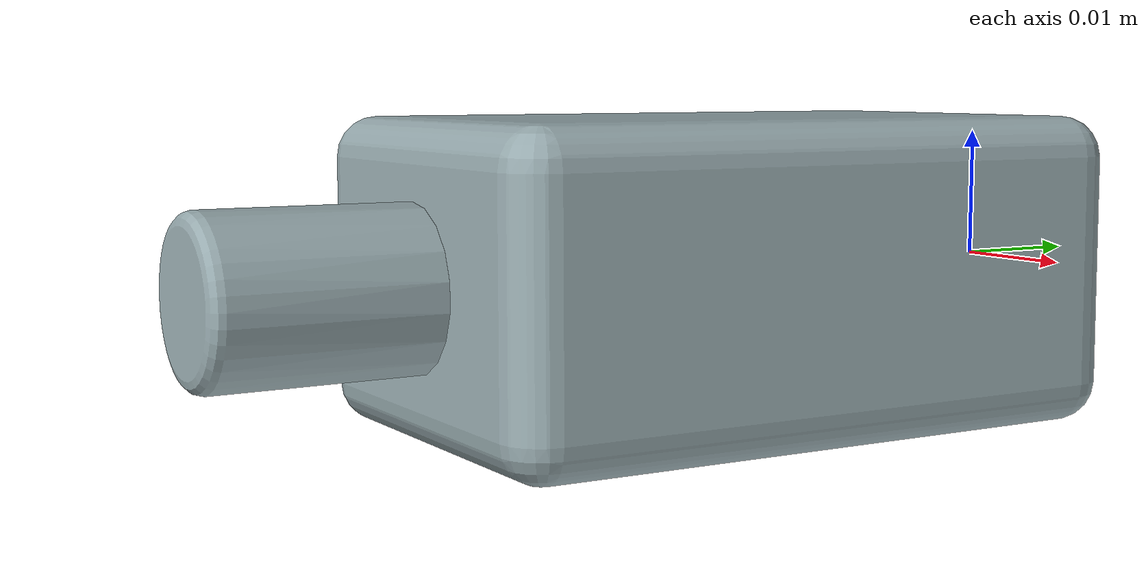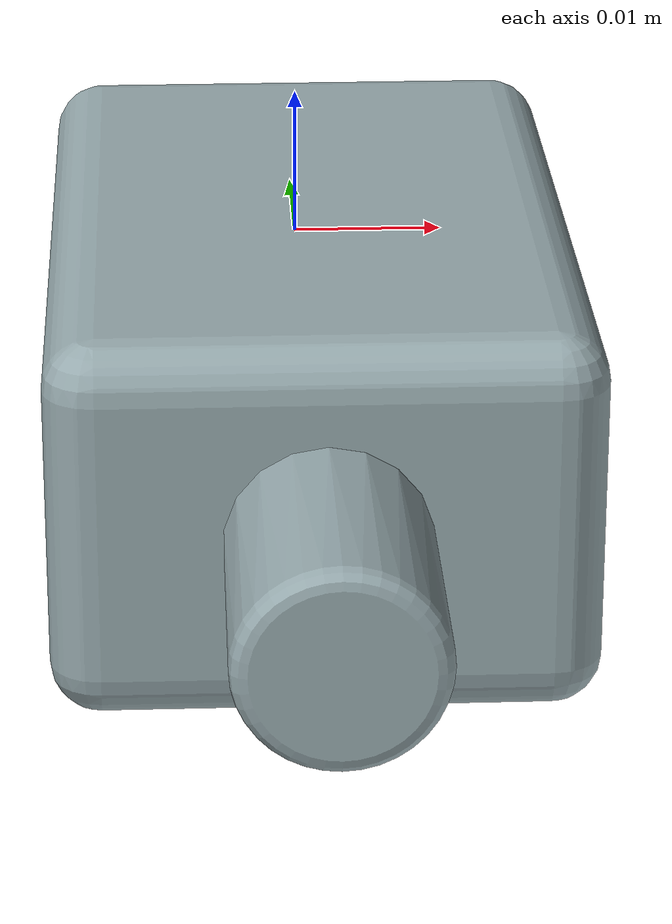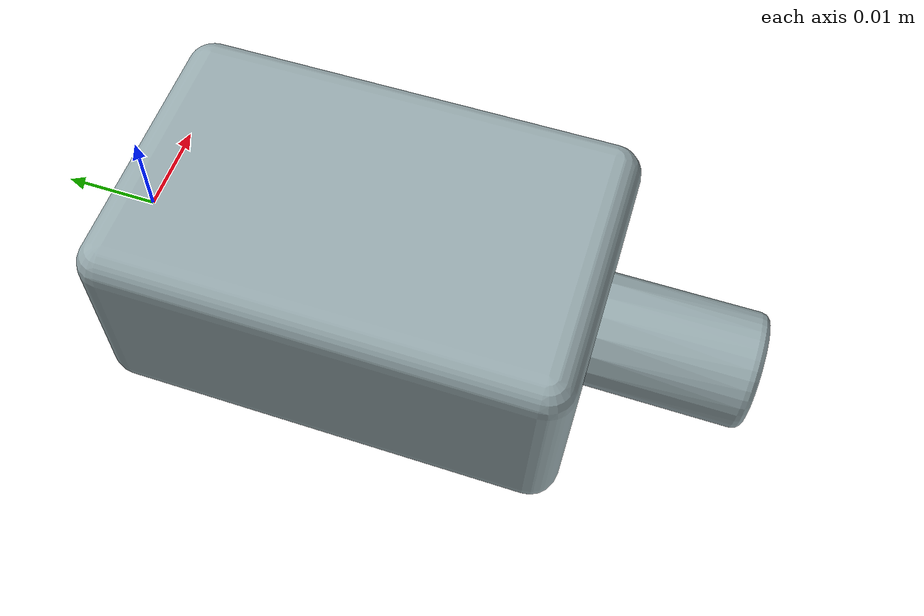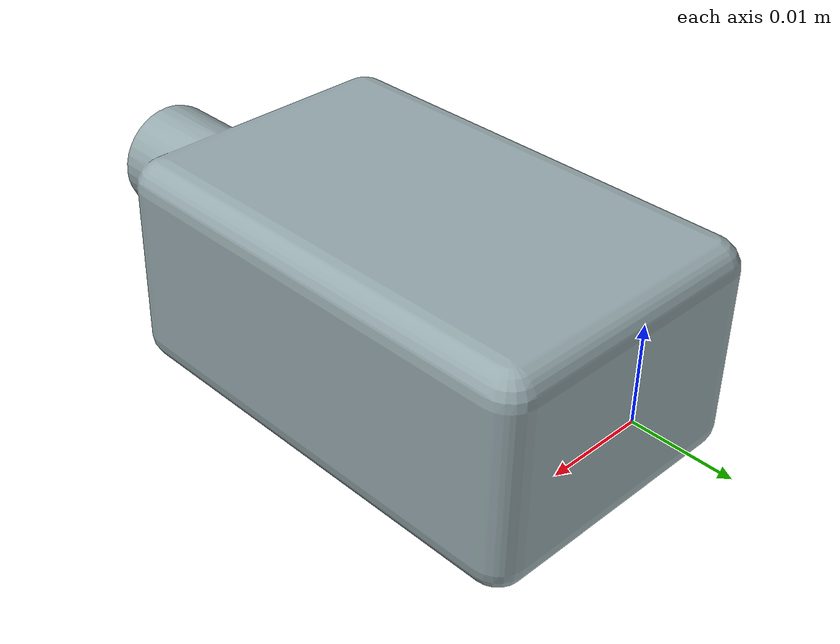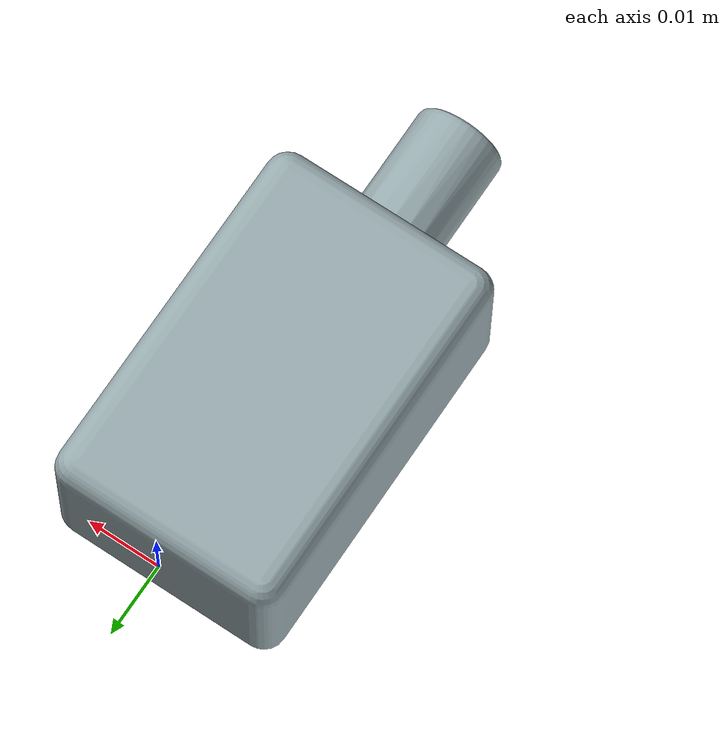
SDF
<?xml version="1.0"?>
<sdf version="1.7">
  <model name="lotion_1">
    <link name="lotion_1">
      <inertial>
        <pose>-8.3644e-19 8.337e-19 0.02657 0 0 0</pose>
        <mass>0.037827</mass>
        <inertia>
          <ixx>1.082e-05</ixx>
          <ixy>1.5833e-22</ixy>
          <ixz>-3.9625e-22</ixz>
          <iyy>1.227e-05</iyy>
          <iyz>-2.9309e-23</iyz>
          <izz>4.5717e-06</izz>
        </inertia>
      </inertial>
      <visual name="lotion_1_visual">
        <pose>0 0 0 0 0 0</pose>
        <geometry>
          <mesh>
            <uri>models://deli_world/lotion_1/meshes/lotion_1.STL</uri>
          </mesh>
        </geometry>
        <material>
          <ambient>0.59216 0.66667 0.68235 1</ambient>
          <diffuse>0.59216 0.66667 0.68235 1</diffuse>
          <specular>0 0 0 1</specular>
        </material>
      </visual>
      <collision name="lotion_1_collision">
        <pose>0 0 0 0 0 0</pose>
        <geometry>
          <mesh>
            <uri>models://deli_world/lotion_1/meshes/lotion_1.STL</uri>
          </mesh>
        </geometry>
      </collision>
    </link>
  </model>
</sdf>
